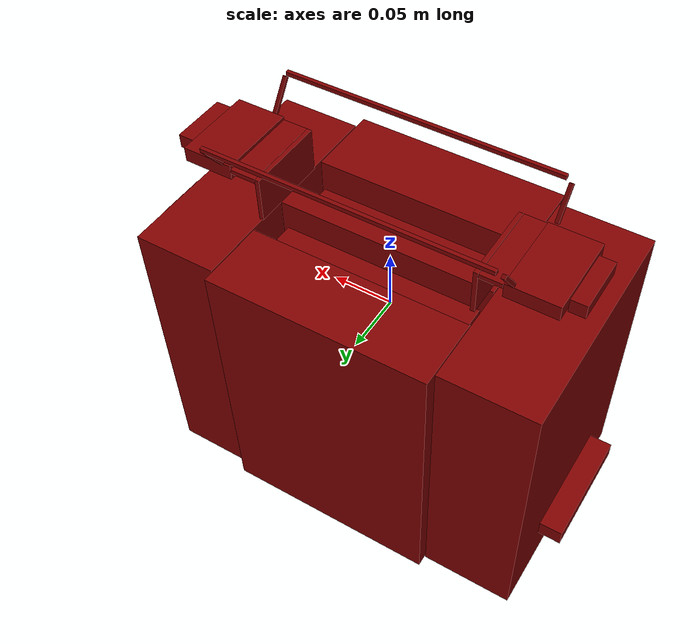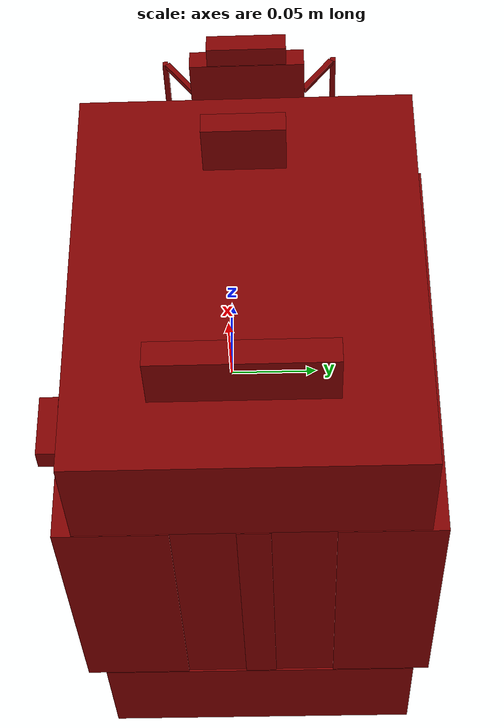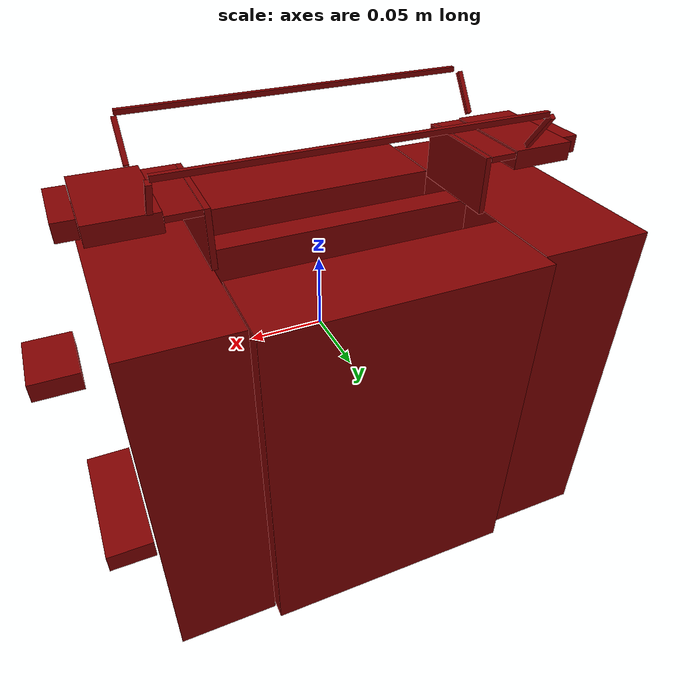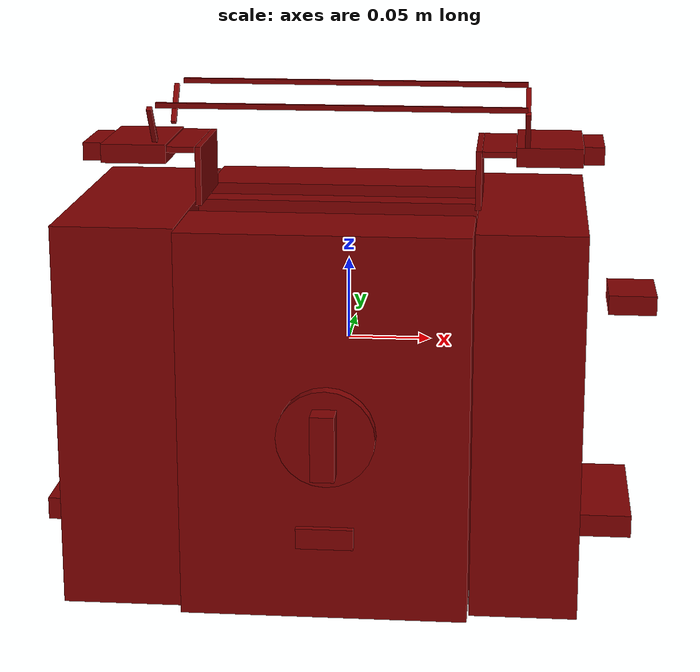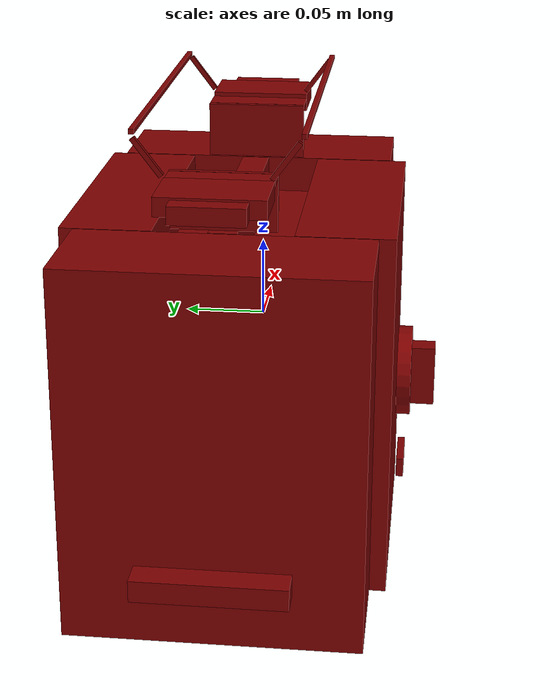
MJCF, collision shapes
<?xml version='1.0' encoding='UTF-8'?>
<mujoco model="model">
  <compiler angle="radian"/>
  <asset>
    <mesh file="visuals/Body001.obj" name="Body001_vis"/>
    <mesh file="visuals/Body002.obj" name="Body002_vis"/>
    <mesh file="visuals/Button001.obj" name="Button001_vis"/>
    <mesh file="visuals/Knob001.obj" name="Knob001_vis"/>
    <mesh file="visuals/Lever001.obj" name="Lever001_vis"/>
    <texture file="visuals/T_BC001.png" name="Body001_material" type="2d"/>
    <material name="Body001_material" rgba="1 1 1 1.0" texture="Body001_material" shininess="0.141421377658844" specular="0.3103448502657381"/>
    <texture file="visuals/T_BC001.png" name="Body002_material" type="2d"/>
    <material name="Body002_material" rgba="1 1 1 1.0" texture="Body002_material" shininess="0.141421377658844" specular="8"/>
    <texture file="visuals/T_BC001.png" name="Button001_material" type="2d"/>
    <material name="Button001_material" rgba="1 1 1 1.0" texture="Button001_material" shininess="0.141421377658844" specular="0.3103448502657381"/>
    <texture file="visuals/T_BC001.png" name="Knob001_material" type="2d"/>
    <material name="Knob001_material" rgba="1 1 1 1.0" texture="Knob001_material" shininess="0.141421377658844" specular="0.3103448502657381"/>
    <texture file="visuals/T_BC001.png" name="Lever001_material" type="2d"/>
    <material name="Lever001_material" rgba="1 1 1 1.0" texture="Lever001_material" shininess="0.141421377658844" specular="0.3103448502657381"/>
  </asset>
  <default>
    <default class="visual">
      <geom conaffinity="0" contype="0" group="1" type="mesh"/>
    </default>
    <default class="collision">
      <geom group="0" rgba="0.5 0 0 0.5"/>
    </default>
    <default class="spawn">
      <geom group="0" rgba="1 1 1 0.5" contype="0" conaffinity="0"/>
      <site group="0" rgba="1 1 1 0.5"/>
    </default>
    <default class="region">
      <geom group="1" conaffinity="0" contype="0" rgba="0 1 0 0"/>
    </default>
  </default>
  <worldbody>
    <body>
      <body name="object">
        <geom mesh="Body001_vis" type="mesh" solimp="0.998 0.998 0.001" solref="0.001 1" density="100" friction="0.95 0.3 0.1" class="visual" material="Body001_material"/>
        <geom class="collision" type="box" pos="-0.007900 0.084302 -0.032943" size="0.08576202392578125 0.02806827612221241 0.11694221943616867" quat="1.0 0.0 0.0 0.0"/>
        <geom class="collision" type="box" pos="-0.007900 -0.058649 -0.032943" size="0.08576203137636185 0.029883073642849922 0.11694221943616867" quat="1.0 0.0 0.0 0.0"/>
        <geom class="collision" type="box" pos="-0.130845 0.012725 -0.032943" size="0.03641093149781227 0.09091868251562119 0.11694221943616867" quat="1.0 0.0 0.0 0.0"/>
        <geom class="collision" type="box" pos="0.111085 0.012725 -0.032943" size="0.03222068026661873 0.09091868251562119 0.11694221943616867" quat="1.0 0.0 0.0 0.0"/>
        <geom class="collision" type="box" pos="0.160215 0.011298 -0.106289" size="0.01553725078701973 0.04710160940885544 0.006863311864435673" quat="1.0 0.0 0.0 0.0"/>
        <geom class="collision" type="box" pos="-0.169933 0.011298 -0.106289" size="0.015537269413471222 0.04710164666175842 0.006863316521048546" quat="1.0 0.0 0.0 0.0"/>
        <body name="Body002">
          <geom mesh="Body002_vis" type="mesh" solimp="0.998 0.998 0.001" solref="0.001 1" density="100" friction="0.95 0.3 0.1" class="visual" material="Body002_material"/>
          <geom class="collision" type="box" pos="-0.007900 0.013928 -0.032943" size="0.08576202392578125 0.008868694305419922 0.11694221943616867" quat="1.0 0.0 0.0 0.0"/>
          <geom class="collision" type="box" pos="0.078717 0.013411 0.102807" size="0.001743199536576867 0.03209192678332329 0.017710207030177116" quat="1.0 0.0 0.0 0.0"/>
          <geom class="collision" type="box" pos="0.090652 0.013411 0.118789" size="0.010049453936517239 0.03209192678332329 0.0017431998858228326" quat="1.0 0.0 0.0 0.0"/>
          <geom class="collision" type="box" pos="0.120622 0.013411 0.117415" size="0.019743118435144424 0.03209192678332329 0.005702401977032423" quat="1.0 0.0 0.0 0.0"/>
          <geom class="collision" type="box" pos="0.146884 0.013411 0.117093" size="0.0060719153843820095 0.022055963054299355 0.005380160640925169" quat="1.0 0.0 0.0 0.0"/>
          <geom class="collision" type="box" pos="-0.089354 0.013411 0.102807" size="0.001743199536576867 0.03209192678332329 0.017710207030177116" quat="1.0 0.0 0.0 0.0"/>
          <geom class="collision" type="box" pos="-0.099963 0.013411 0.118789" size="0.008588558994233608 0.03209192678332329 0.001743199652992189" quat="1.0 0.0 0.0 0.0"/>
          <geom class="collision" type="box" pos="-0.128638 0.013411 0.115818" size="0.019743118435144424 0.03209192678332329 0.005702401977032423" quat="1.0 0.0 0.0 0.0"/>
          <geom class="collision" type="box" pos="-0.155247 0.013411 0.115017" size="0.0060719153843820095 0.022055963054299355 0.005380160640925169" quat="1.0 0.0 0.0 0.0"/>
          <geom class="collision" type="box" pos="-0.001982 -0.035362 0.148252" size="0.10886382311582565 0.0015534975100308657 0.0015460416907444596" quat="1.0 0.0 0.0 0.0"/>
          <geom class="collision" type="box" pos="-0.001982 0.063248 0.148252" size="0.10886382311582565 0.0015534975100308657 0.0015460416907444596" quat="1.0 0.0 0.0 0.0"/>
          <geom class="collision" type="box" pos="0.107293 0.053758 0.134977" size="0.01359183806926012 0.0015534976264461875 0.0015460456488654017" quat="0.6703130602836609 -0.22512316703796387 0.6703130006790161 -0.22512316703796387"/>
          <geom class="collision" type="box" pos="0.107293 -0.025800 0.135078" size="0.01359183806926012 0.0015534976264461875 0.0015460456488654017" quat="0.2204134166240692 -0.6718761324882507 0.22041507065296173 -0.6718761920928955"/>
          <geom class="collision" type="box" pos="-0.115119 0.053758 0.134977" size="0.01359183806926012 0.0015534976264461875 0.0015460456488654017" quat="0.6703130602836609 -0.22512316703796387 0.6703130006790161 -0.22512316703796387"/>
          <geom class="collision" type="box" pos="-0.115119 -0.025800 0.135078" size="0.01359183806926012 0.0015534976264461875 0.0015460456488654017" quat="0.2204134166240692 -0.6718761324882507 0.22041507065296173 -0.6718761920928955"/>
          <geom class="collision" type="box" pos="-0.007900 0.012066 -0.141239" size="0.08576202392578125 0.04851778224110603 0.007821197621524334" quat="1.0 0.0 0.0 0.0"/>
        </body>
        <body name="Button001">
          <joint axis="0.0 1.0 0.0" pos="-0.000986 -0.097061 -0.097301" limited="true" name="Button001_joint" range="0.0 0.003" type="slide" damping="1" frictionloss="1" armature=".01" stiffness="0.05"/>
          <geom mesh="Button001_vis" type="mesh" solimp="0.998 0.998 0.001" solref="0.001 1" density="100" friction="0.95 0.3 0.1" class="visual" material="Button001_material"/>
          <geom class="collision" type="box" pos="-0.006253 -0.093512 -0.097197" size="0.017054395750164986 0.002297984668985009 0.006246058735996485" quat="1.0 0.0 0.0 0.0"/>
        </body>
        <body name="Knob001">
          <joint axis="0.0 1.0 0.0" pos="-0.005320 -0.094480 -0.034590" limited="true" name="Knob001_joint" range="0.0 5.497787143782138" type="hinge" damping="0.05" frictionloss="1" armature="0.001"/>
          <geom mesh="Knob001_vis" type="mesh" solimp="0.998 0.998 0.001" solref="0.001 1" density="100" friction="0.95 0.3 0.1" class="visual" material="Knob001_material"/>
          <geom class="collision" type="cylinder" pos="-0.005182 -0.094167 -0.034395" size="0.029119739308953285 0.0044754380360245705" quat="0.7071069478988647 0.7071065902709961 0.0 0.0" density="0.001"/>
          <geom class="collision" type="box" pos="-0.005493 -0.105027 -0.035519" size="0.007064640522003174 0.008776964619755745 0.019527440890669823" quat="1.0 0.0 0.0 0.0" density="0.001"/>
        </body>
        <body name="Lever001">
          <joint axis="0.0 0.0 -1.0" pos="0.165659 0.012752 0.026086" limited="true" name="Lever001_joint" range="0.0 0.1" type="slide" damping="1" frictionloss="1" armature=".01" stiffness="2" springref="-1.5"/>
          <geom mesh="Lever001_vis" type="mesh" solimp="0.998 0.998 0.001" solref="0.001 1" density="100" friction="0.95 0.3 0.1" class="visual" material="Lever001_material"/>
          <geom class="collision" type="box" pos="-0.005955 0.037636 0.059300" size="0.07907406240701675 0.014000018127262592 0.0029164692386984825" quat="1.0 0.0 0.0 0.0" name="slotR_floor"/>
          <geom class="collision" type="box" pos="-0.005955 -0.011259 0.059300" size="0.07907406240701675 0.013999986462295055 0.0029164664447307587" quat="1.0 0.0 0.0 0.0" name="slotL_floor"/>
          <geom class="collision" type="box" pos="0.173019 0.012686 0.026038" size="0.014526644721627235 0.021635927259922028 0.0059326267801225185" quat="1.0 0.0 0.0 0.0" name="lever_knob"/>
        </body>
        <geom class="region" name="reg_main" type="box" pos="-0.004602999999999996 0.010112499999999996 0.0" size="0.183305 0.1046555 0.149886"/>
      </body>
    </body>
  </worldbody>
  <actuator>
    <motor name="Button001_joint_actuator" joint="Button001_joint" gear="0.2"/>
    <motor name="Knob001_joint_actuator" joint="Knob001_joint" gear="10"/>
    <motor name="Lever001_joint_actuator" joint="Lever001_joint" gear="1.5"/>
  </actuator>
</mujoco>
